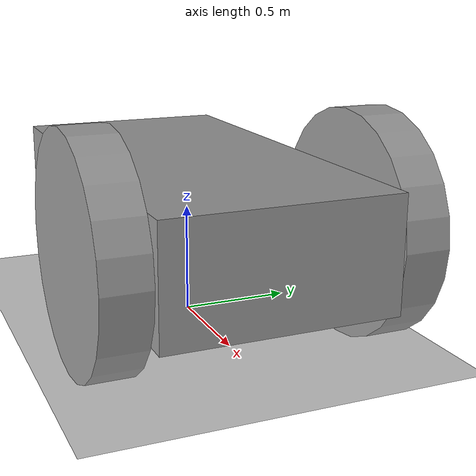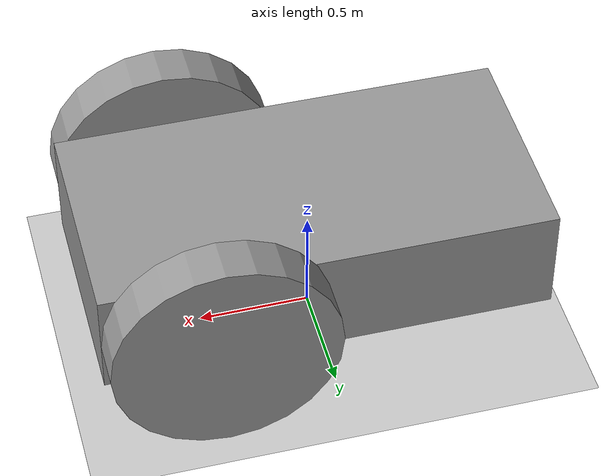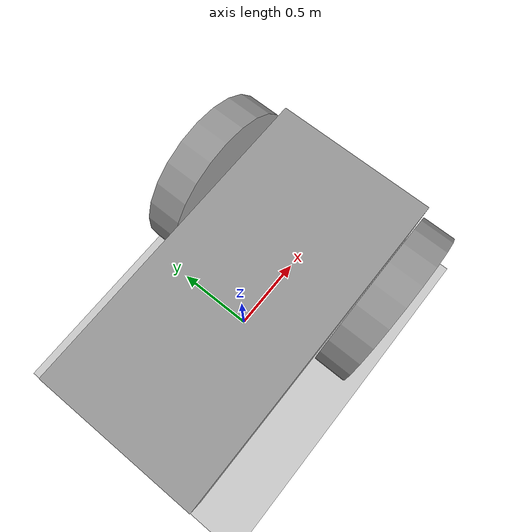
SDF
<?xml version="1.0" ?>
<sdf version="1.4">
  <world name="default">
    <include>
      <uri>model://ground_plane</uri>
    </include>

    <include>
      <uri>model://sun</uri>
    </include>

    <model name="bot">
     <pose frame=''>0 0 0.3735 0 -0 0</pose>
      <include>
        <uri>model://ROS_BOT_1_friction</uri>
      </include>

      <plugin name="differential_drive_controller" filename="libgazebo_ros_diff_drive.so">
			 <alwaysOn>true</alwaysOn>
			 <updateRate>1000</updateRate>
			 <leftJoint>bot::ROS_BOT_1_friction::link_0_JOINT_1</leftJoint>
			 <rightJoint>bot::ROS_BOT_1_friction::link_0_JOINT_0</rightJoint>
			 <wheelSeparation>1.22</wheelSeparation>
			 <wheelDiameter>1</wheelDiameter>
			 <wheelAcceleration>0.12</wheelAcceleration>
			 <torque>20.0</torque>
			 <commandTopic>cmd_vel</commandTopic>
			 <odometryTopic>odom</odometryTopic>
			 <odometryFrame>odom</odometryFrame>
			 <robotBaseFrame>bot::ROS_BOT_1_friction::link_0</robotBaseFrame>
			 <legacyMode>false</legacyMode>
			 <publishWheelTF>true</publishWheelTF>
			 <rosDebugLevel>true</rosDebugLevel>
			 <tf_prefix>_bot</tf_prefix>
			 <publishWheelTF>true</publishWheelTF>
			 <publishWheelJointState>true</publishWheelJointState>
			 <wheelTorque>20.0</wheelTorque>
			 <odometrySource>1</odometrySource>
			 <publishTf>1</publishTf>
		 </plugin>

    </model>
  </world>
</sdf>

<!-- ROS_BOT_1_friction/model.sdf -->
<sdf version='1.6'>
  <model name='ROS_BOT_1_friction'>
    <link name='link_0'>
      <inertial>
        <mass>0.560007</mass>
        <inertia>
          <ixx>0.0583341</ixx>
          <ixy>0</ixy>
          <ixz>0</ixz>
          <iyy>0.165262</iyy>
          <iyz>0</iyz>
          <izz>0.200263</izz>
        </inertia>
        <pose frame=''>0 0 0 0 -0 0</pose>
      </inertial>
      <pose frame=''>0.02181 -0 0.128968 0 -0 0</pose>
      <gravity>1</gravity>
      <self_collide>0</self_collide>
      <kinematic>0</kinematic>
      <enable_wind>0</enable_wind>
      <visual name='visual'>
        <pose frame=''>0 0 0 0 -0 0</pose>
        <geometry>
          <box>
            <size>2 1 0.5</size>
          </box>
        </geometry>
        <material>
          <lighting>1</lighting>
          <script>
            <uri>file://media/materials/scripts/gazebo.material</uri>
            <name>Gazebo/Grey</name>
          </script>
          <shader type='pixel'>
            <normal_map>__default__</normal_map>
          </shader>
          <ambient>0.3 0.3 0.3 1</ambient>
          <diffuse>0.7 0.7 0.7 1</diffuse>
          <specular>0.01 0.01 0.01 1</specular>
          <emissive>0 0 0 1</emissive>
        </material>
        <transparency>0</transparency>
        <cast_shadows>1</cast_shadows>
      </visual>
      <collision name='collision'>
        <laser_retro>0</laser_retro>
        <max_contacts>10</max_contacts>
        <pose frame=''>0 0 0 0 -0 0</pose>
        <geometry>
          <box>
            <size>2 1 0.5</size>
          </box>
        </geometry>
        <surface>
          <friction>
            <ode>
              <mu>1</mu>
              <mu2>1</mu2>
              <fdir1>0 0 0</fdir1>
              <slip1>0</slip1>
              <slip2>0</slip2>
            </ode>
            <torsional>
              <coefficient>1</coefficient>
              <patch_radius>0</patch_radius>
              <surface_radius>0</surface_radius>
              <use_patch_radius>1</use_patch_radius>
              <ode>
                <slip>0</slip>
              </ode>
            </torsional>
          </friction>
          <bounce>
            <restitution_coefficient>0</restitution_coefficient>
            <threshold>1e+06</threshold>
          </bounce>
          <contact>
            <collide_without_contact>0</collide_without_contact>
            <collide_without_contact_bitmask>1</collide_without_contact_bitmask>
            <collide_bitmask>1</collide_bitmask>
            <ode>
              <soft_cfm>0</soft_cfm>
              <soft_erp>0.2</soft_erp>
              <kp>1e+13</kp>
              <kd>1</kd>
              <max_vel>0.01</max_vel>
              <min_depth>0</min_depth>
            </ode>
            <bullet>
              <split_impulse>1</split_impulse>
              <split_impulse_penetration_threshold>-0.01</split_impulse_penetration_threshold>
              <soft_cfm>0</soft_cfm>
              <soft_erp>0.2</soft_erp>
              <kp>1e+13</kp>
              <kd>1</kd>
            </bullet>
          </contact>
        </surface>
      </collision>
    </link>
    <link name='link_1'>
      <inertial>
        <mass>0.345958</mass>
        <inertia>
          <ixx>0.025073</ixx>
          <ixy>0</ixy>
          <ixz>0</ixz>
          <iyy>0.025073</iyy>
          <iyz>0</iyz>
          <izz>0.0432448</izz>
        </inertia>
        <pose frame=''>0 0 0 0 -0 0</pose>
      </inertial>
      <pose frame=''>0.52181 -0.61 0.128967 -1.5708 0 0</pose>
      <gravity>1</gravity>
      <self_collide>0</self_collide>
      <kinematic>0</kinematic>
      <enable_wind>0</enable_wind>
      <visual name='visual'>
        <pose frame=''>0 0 0 0 -0 0</pose>
        <geometry>
          <cylinder>
            <radius>0.5</radius>
            <length>0.2</length>
          </cylinder>
        </geometry>
        <material>
          <lighting>1</lighting>
          <script>
            <uri>file://media/materials/scripts/gazebo.material</uri>
            <name>Gazebo/Grey</name>
          </script>
          <shader type='pixel'>
            <normal_map>__default__</normal_map>
          </shader>
          <ambient>0.3 0.3 0.3 1</ambient>
          <diffuse>0.7 0.7 0.7 1</diffuse>
          <specular>0.01 0.01 0.01 1</specular>
          <emissive>0 0 0 1</emissive>
        </material>
        <transparency>0</transparency>
        <cast_shadows>1</cast_shadows>
      </visual>
      <collision name='collision'>
        <laser_retro>0</laser_retro>
        <max_contacts>10</max_contacts>
        <pose frame=''>0 0 0 0 -0 0</pose>
        <geometry>
          <cylinder>
            <radius>0.5</radius>
            <length>0.2</length>
          </cylinder>
        </geometry>
        <surface>
          <friction>
            <ode>
              <mu>1</mu>
              <mu2>1</mu2>
              <fdir1>1 1 1</fdir1>
              <slip1>0</slip1>
              <slip2>0</slip2>
            </ode>
            <torsional>
              <coefficient>1</coefficient>
              <patch_radius>0</patch_radius>
              <surface_radius>0</surface_radius>
              <use_patch_radius>1</use_patch_radius>
              <ode>
                <slip>0</slip>
              </ode>
            </torsional>
          </friction>
          <bounce>
            <restitution_coefficient>0</restitution_coefficient>
            <threshold>1e+06</threshold>
          </bounce>
          <contact>
            <collide_without_contact>0</collide_without_contact>
            <collide_without_contact_bitmask>1</collide_without_contact_bitmask>
            <collide_bitmask>1</collide_bitmask>
            <ode>
              <soft_cfm>0</soft_cfm>
              <soft_erp>0.2</soft_erp>
              <kp>1e+13</kp>
              <kd>1</kd>
              <max_vel>0.01</max_vel>
              <min_depth>0</min_depth>
            </ode>
            <bullet>
              <split_impulse>1</split_impulse>
              <split_impulse_penetration_threshold>-0.01</split_impulse_penetration_threshold>
              <soft_cfm>0</soft_cfm>
              <soft_erp>0.2</soft_erp>
              <kp>1e+13</kp>
              <kd>1</kd>
            </bullet>
          </contact>
        </surface>
      </collision>
    </link>
    <link name='link_1_clone'>
      <inertial>
        <mass>0.345958</mass>
        <inertia>
          <ixx>0.025073</ixx>
          <ixy>0</ixy>
          <ixz>0</ixz>
          <iyy>0.025073</iyy>
          <iyz>0</iyz>
          <izz>0.0432448</izz>
        </inertia>
        <pose frame=''>0 0 0 0 -0 0</pose>
      </inertial>
      <pose frame=''>0.52181 0.61 0.128968 -1.5708 0 0</pose>
      <gravity>1</gravity>
      <self_collide>0</self_collide>
      <kinematic>0</kinematic>
      <enable_wind>0</enable_wind>
      <visual name='visual'>
        <pose frame=''>0 0 0 0 -0 0</pose>
        <geometry>
          <cylinder>
            <radius>0.5</radius>
            <length>0.2</length>
          </cylinder>
        </geometry>
        <material>
          <lighting>1</lighting>
          <script>
            <uri>file://media/materials/scripts/gazebo.material</uri>
            <name>Gazebo/Grey</name>
          </script>
          <shader type='pixel'>
            <normal_map>__default__</normal_map>
          </shader>
          <ambient>0.3 0.3 0.3 1</ambient>
          <diffuse>0.7 0.7 0.7 1</diffuse>
          <specular>0.01 0.01 0.01 1</specular>
          <emissive>0 0 0 1</emissive>
        </material>
        <transparency>0</transparency>
        <cast_shadows>1</cast_shadows>
      </visual>
      <collision name='collision'>
        <laser_retro>0</laser_retro>
        <max_contacts>10</max_contacts>
        <pose frame=''>0 0 0 0 -0 0</pose>
        <geometry>
          <cylinder>
            <radius>0.5</radius>
            <length>0.2</length>
          </cylinder>
        </geometry>
        <surface>
          <friction>
            <ode>
              <mu>1</mu>
              <mu2>1</mu2>
              <fdir1>1 1 1</fdir1>
              <slip1>0</slip1>
              <slip2>0</slip2>
            </ode>
            <torsional>
              <coefficient>1</coefficient>
              <patch_radius>0</patch_radius>
              <surface_radius>0</surface_radius>
              <use_patch_radius>1</use_patch_radius>
              <ode>
                <slip>0</slip>
              </ode>
            </torsional>
          </friction>
          <bounce>
            <restitution_coefficient>0</restitution_coefficient>
            <threshold>1e+06</threshold>
          </bounce>
          <contact>
            <collide_without_contact>0</collide_without_contact>
            <collide_without_contact_bitmask>1</collide_without_contact_bitmask>
            <collide_bitmask>1</collide_bitmask>
            <ode>
              <soft_cfm>0</soft_cfm>
              <soft_erp>0.2</soft_erp>
              <kp>1e+13</kp>
              <kd>1</kd>
              <max_vel>0.01</max_vel>
              <min_depth>0</min_depth>
            </ode>
            <bullet>
              <split_impulse>1</split_impulse>
              <split_impulse_penetration_threshold>-0.01</split_impulse_penetration_threshold>
              <soft_cfm>0</soft_cfm>
              <soft_erp>0.2</soft_erp>
              <kp>1e+13</kp>
              <kd>1</kd>
            </bullet>
          </contact>
        </surface>
      </collision>
    </link>
    <link name='link_1_clone_0'>
      <inertial>
        <mass>0.345958</mass>
        <inertia>
          <ixx>0.00093697</ixx>
          <ixy>0</ixy>
          <ixz>0</ixz>
          <iyy>0.00093697</iyy>
          <iyz>0</iyz>
          <izz>0.00172979</izz>
        </inertia>
        <pose frame=''>0 0 0 0 -0 0</pose>
      </inertial>
      <pose frame=''>-0.587242 -1e-06 -0.271032 -1.5708 0 0</pose>
      <gravity>1</gravity>
      <self_collide>0</self_collide>
      <kinematic>0</kinematic>
      <enable_wind>0</enable_wind>
      <visual name='visual'>
        <pose frame=''>0 0 0 0 -0 0</pose>
        <geometry>
          <cylinder>
            <radius>0.1</radius>
            <length>0.05</length>
          </cylinder>
        </geometry>
        <material>
          <lighting>1</lighting>
          <script>
            <uri>file://media/materials/scripts/gazebo.material</uri>
            <name>Gazebo/Grey</name>
          </script>
          <shader type='pixel'>
            <normal_map>__default__</normal_map>
          </shader>
          <ambient>0.3 0.3 0.3 1</ambient>
          <diffuse>0.7 0.7 0.7 1</diffuse>
          <specular>0.01 0.01 0.01 1</specular>
          <emissive>0 0 0 1</emissive>
        </material>
        <transparency>0</transparency>
        <cast_shadows>1</cast_shadows>
      </visual>
      <collision name='collision'>
        <laser_retro>0</laser_retro>
        <max_contacts>10</max_contacts>
        <pose frame=''>0 0 0 0 -0 0</pose>
        <geometry>
          <cylinder>
            <radius>0.1</radius>
            <length>0.05</length>
          </cylinder>
        </geometry>
        <surface>
          <friction>
            <ode>
              <mu>1</mu>
              <mu2>1</mu2>
              <fdir1>1 1 1</fdir1>
              <slip1>0</slip1>
              <slip2>0</slip2>
            </ode>
            <torsional>
              <coefficient>1</coefficient>
              <patch_radius>0</patch_radius>
              <surface_radius>0</surface_radius>
              <use_patch_radius>1</use_patch_radius>
              <ode>
                <slip>0</slip>
              </ode>
            </torsional>
          </friction>
          <bounce>
            <restitution_coefficient>0</restitution_coefficient>
            <threshold>1e+06</threshold>
          </bounce>
          <contact>
            <collide_without_contact>0</collide_without_contact>
            <collide_without_contact_bitmask>1</collide_without_contact_bitmask>
            <collide_bitmask>1</collide_bitmask>
            <ode>
              <soft_cfm>0</soft_cfm>
              <soft_erp>0.2</soft_erp>
              <kp>1e+13</kp>
              <kd>1</kd>
              <max_vel>0.01</max_vel>
              <min_depth>0</min_depth>
            </ode>
            <bullet>
              <split_impulse>1</split_impulse>
              <split_impulse_penetration_threshold>-0.01</split_impulse_penetration_threshold>
              <soft_cfm>0</soft_cfm>
              <soft_erp>0.2</soft_erp>
              <kp>1e+13</kp>
              <kd>1</kd>
            </bullet>
          </contact>
        </surface>
      </collision>
    </link>
    <link name='link_2'>
      <inertial>
        <mass>0.0190183</mass>
        <inertia>
          <ixx>0.00023357</ixx>
          <ixy>0</ixy>
          <ixz>0</ixz>
          <iyy>0.00023212</iyy>
          <iyz>0</iyz>
          <izz>0.00021396</izz>
        </inertia>
        <pose frame=''>0 0 0 0 -0 0</pose>
      </inertial>
      <pose frame=''>-0.47819 -0 -0.115871 0 -0 0</pose>
      <gravity>1</gravity>
      <self_collide>0</self_collide>
      <kinematic>0</kinematic>
      <enable_wind>0</enable_wind>
      <visual name='visual'>
        <pose frame=''>0 0 0 0 -0 0</pose>
        <geometry>
          <box>
            <size>0.25 0.25 0.25</size>
          </box>
        </geometry>
        <material>
          <lighting>1</lighting>
          <script>
            <uri>file://media/materials/scripts/gazebo.material</uri>
            <name>Gazebo/Grey</name>
          </script>
          <shader type='pixel'>
            <normal_map>__default__</normal_map>
          </shader>
          <ambient>0.3 0.3 0.3 1</ambient>
          <diffuse>0.7 0.7 0.7 1</diffuse>
          <specular>0.01 0.01 0.01 1</specular>
          <emissive>0 0 0 1</emissive>
        </material>
        <transparency>0</transparency>
        <cast_shadows>1</cast_shadows>
      </visual>
      <collision name='collision'>
        <laser_retro>0</laser_retro>
        <max_contacts>10</max_contacts>
        <pose frame=''>0 0 0 0 -0 0</pose>
        <geometry>
          <box>
            <size>0.25 0.25 0.25</size>
          </box>
        </geometry>
        <surface>
          <friction>
            <ode>
              <mu>1</mu>
              <mu2>1</mu2>
              <fdir1>0 0 0</fdir1>
              <slip1>0</slip1>
              <slip2>0</slip2>
            </ode>
            <torsional>
              <coefficient>1</coefficient>
              <patch_radius>0</patch_radius>
              <surface_radius>0</surface_radius>
              <use_patch_radius>1</use_patch_radius>
              <ode>
                <slip>0</slip>
              </ode>
            </torsional>
          </friction>
          <bounce>
            <restitution_coefficient>0</restitution_coefficient>
            <threshold>1e+06</threshold>
          </bounce>
          <contact>
            <collide_without_contact>0</collide_without_contact>
            <collide_without_contact_bitmask>1</collide_without_contact_bitmask>
            <collide_bitmask>1</collide_bitmask>
            <ode>
              <soft_cfm>0</soft_cfm>
              <soft_erp>0.2</soft_erp>
              <kp>1e+13</kp>
              <kd>1</kd>
              <max_vel>0.01</max_vel>
              <min_depth>0</min_depth>
            </ode>
            <bullet>
              <split_impulse>1</split_impulse>
              <split_impulse_penetration_threshold>-0.01</split_impulse_penetration_threshold>
              <soft_cfm>0</soft_cfm>
              <soft_erp>0.2</soft_erp>
              <kp>1e+13</kp>
              <kd>1</kd>
            </bullet>
          </contact>
        </surface>
      </collision>
    </link>
    <joint name='link_0_JOINT_0' type='revolute'>
      <parent>link_0</parent>
      <child>link_1</child>
      <pose frame=''>0 0 0 0 -0 0</pose>
      <axis>
        <xyz>0 0 1</xyz>
        <use_parent_model_frame>0</use_parent_model_frame>
        <limit>
          <lower>-1.79769e+308</lower>
          <upper>1.79769e+308</upper>
          <effort>-1</effort>
          <velocity>-1</velocity>
        </limit>
        <dynamics>
          <spring_reference>0</spring_reference>
          <spring_stiffness>0</spring_stiffness>
          <damping>0</damping>
          <friction>0.2</friction>
        </dynamics>
      </axis>
      <physics>
        <ode>
          <limit>
            <cfm>0</cfm>
            <erp>0.2</erp>
          </limit>
          <suspension>
            <cfm>0</cfm>
            <erp>0.2</erp>
          </suspension>
        </ode>
      </physics>
    </joint>
    <joint name='link_0_JOINT_1' type='revolute'>
      <parent>link_0</parent>
      <child>link_1_clone</child>
      <pose frame=''>0 0 0 0 -0 0</pose>
      <axis>
        <xyz>0 0 1</xyz>
        <use_parent_model_frame>0</use_parent_model_frame>
        <limit>
          <lower>-1.79769e+308</lower>
          <upper>1.79769e+308</upper>
          <effort>-1</effort>
          <velocity>-1</velocity>
        </limit>
        <dynamics>
          <spring_reference>0</spring_reference>
          <spring_stiffness>0</spring_stiffness>
          <damping>0</damping>
          <friction>0.2</friction>
        </dynamics>
      </axis>
      <physics>
        <ode>
          <limit>
            <cfm>0</cfm>
            <erp>0.2</erp>
          </limit>
          <suspension>
            <cfm>0</cfm>
            <erp>0.2</erp>
          </suspension>
        </ode>
      </physics>
    </joint>
    <joint name='link_0_JOINT_2' type='revolute'>
      <parent>link_0</parent>
      <child>link_2</child>
      <pose frame=''>0 0 0 0 -0 0</pose>
      <axis>
        <xyz>0 0 1</xyz>
        <use_parent_model_frame>0</use_parent_model_frame>
        <limit>
          <lower>-1.79769e+308</lower>
          <upper>1.79769e+308</upper>
          <effort>-1</effort>
          <velocity>-1</velocity>
        </limit>
        <dynamics>
          <spring_reference>0</spring_reference>
          <spring_stiffness>0</spring_stiffness>
          <damping>0</damping>
          <friction>0.02</friction>
        </dynamics>
      </axis>
      <physics>
        <ode>
          <limit>
            <cfm>0</cfm>
            <erp>0.2</erp>
          </limit>
          <suspension>
            <cfm>0</cfm>
            <erp>0.2</erp>
          </suspension>
        </ode>
      </physics>
    </joint>
    <joint name='link_2_JOINT_3' type='revolute'>
      <parent>link_2</parent>
      <child>link_1_clone_0</child>
      <pose frame=''>0 0 0 0 -0 0</pose>
      <axis>
        <xyz>0 0 1</xyz>
        <use_parent_model_frame>0</use_parent_model_frame>
        <limit>
          <lower>-1.79769e+308</lower>
          <upper>1.79769e+308</upper>
          <effort>-1</effort>
          <velocity>-1</velocity>
        </limit>
        <dynamics>
          <spring_reference>0</spring_reference>
          <spring_stiffness>0</spring_stiffness>
          <damping>0</damping>
          <friction>0.1</friction>
        </dynamics>
      </axis>
      <physics>
        <ode>
          <limit>
            <cfm>0</cfm>
            <erp>0.2</erp>
          </limit>
          <suspension>
            <cfm>0</cfm>
            <erp>0.2</erp>
          </suspension>
        </ode>
      </physics>
    </joint>
    <static>0</static>
    <allow_auto_disable>1</allow_auto_disable>
  </model>
</sdf>
